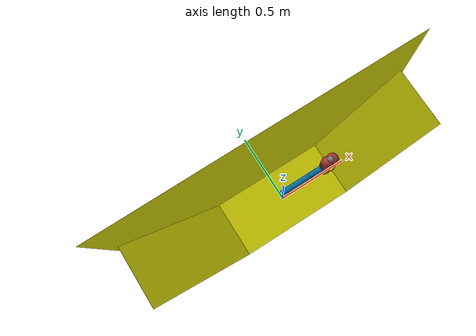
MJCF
<mujoco model="reacher_push">
	<compiler angle="radian" inertiafromgeom="true"/>
	<default>
		<joint armature="1" damping="1" limited="true"/>
		<geom rgba="0.7 0.7 0 1"/>
	</default>
	<option gravity="0 0 -9.81" integrator="RK4" timestep="0.01" />
	<worldbody>
		<!-- Arena -->
		<light name="light" directional="true" diffuse=".6 .6 .6" pos="0 0 1" specular=".3 .3 .3"/>
		<geom name="floor" type="plane" pos="0 0 0" size=".4 .2 10"/>
		<geom name="wall1" type="plane" pos="-.682843 0 .282843" size=".4 .2 10" zaxis="1 0 1"/>
		<geom name="wall2" type="plane" pos=".682843 0 .282843" size=".4 .2 10" zaxis="-1 0 1"/>
		<geom name="background" type="plane" pos="0 .2 .5" size="1 .5 10" zaxis="0 -1 0"/>

		<!-- Arm -->
		<body name="body0" pos="0 0 0.25">
			<geom fromto="0 0 0 0.2 0 0" name="link0" rgba="0.0 0.4 0.6 1" size=".02" type="capsule"/>
			<joint axis="0 -1 0" limited="false" name="joint0" pos="0 0 0" type="hinge"/>
			<body name="body1" pos="0.2 0 0">
				<joint axis="0 -1 0" limited="true" name="joint1" pos="0 0 0" range="-3.0 3.0" type="hinge"/>
				<geom fromto="0 0 0 0.2 0 0" name="link1" rgba="0.0 0.4 0.6 1" size=".02" type="capsule"/>
				<body name="fingertip" pos="0.21 0 0">
					<geom name="fingertip" pos="0 0 0" rgba="0.0 0.8 0.6 1" size=".02" type="sphere"/>
				</body>
			</body>
		</body>

		<body name="spinner" pos=".35 0 .25">
		  <joint name="hinge" frictionloss=".1" damping=".5" limited="false" axis="0 -1 0" />
		  <geom name="cap1" type="capsule" size=".04 .09"  pos=".02 0 0" rgba="0.6 0.2 0.2 1" />
		  <geom name="cap2" type="capsule" size=".04 .09"  pos="-.02 0 0" rgba="0.6 0.2 0.2 1" />
		  <site name="tip" type="sphere"  size=".02" pos="0 0 .13" />
		  <geom name="spinner_decoration" type="cylinder" fromto="0 -.045 0 0 .045 0" size=".02" />
		</body>

	</worldbody>
	<actuator>
		<motor ctrllimited="true" ctrlrange="-1.0 1.0" gear="200.0" joint="joint0"/>
		<motor ctrllimited="true" ctrlrange="-1.0 1.0" gear="200.0" joint="joint1"/>
	</actuator>
</mujoco>
